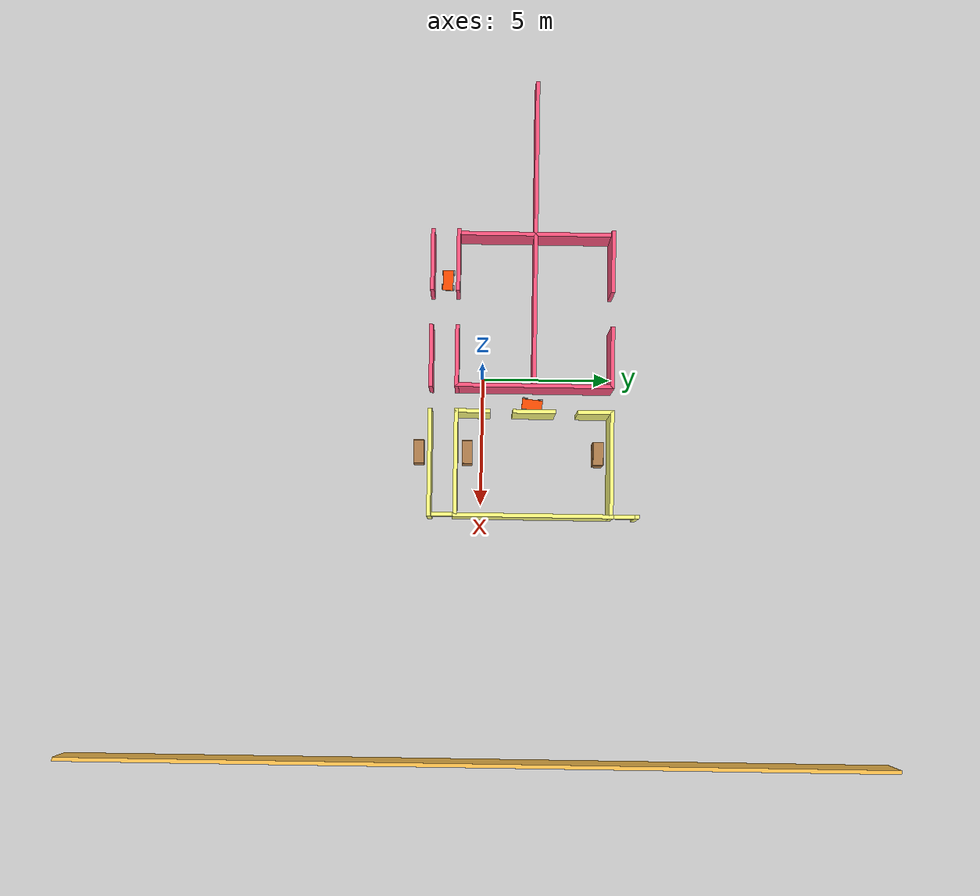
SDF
<sdf version="1.6">
 <world name="default">
  <model name="ground_plane">
   <static>1</static>
   <link name="link">
    <collision name="collision">
     <geometry><plane><normal>0 0 1</normal><size>100 100</size></plane></geometry>
     <surface><friction><ode><mu>100</mu><mu2>50</mu2></ode></friction></surface>
    </collision>
    <visual name="visual">
     <cast_shadows>0</cast_shadows>
     <geometry><plane><normal>0 0 1</normal><size>100 100</size></plane></geometry>
     <material>
      <script><uri>file://media/materials/scripts/gazebo.material</uri><name>Gazebo/Grey</name></script>
     </material>
    </visual>
   </link>
  </model>
  <model name="myWorld">
   <pose>-1.5 0 0 0 -0 0</pose>
   <link name="Wall_130">
    <collision name="Wall_130_Collision">
     <geometry><box><size>2.4 0.15 2.5</size></box></geometry>
     <pose>0 0 1.25 0 -0 0</pose>
    </collision>
    <visual name="Wall_130_Visual">
     <pose>0 0 1.25 0 -0 0</pose>
     <geometry><box><size>2.4 0.15 2.5</size></box></geometry>
     <material>
      <script><uri>file://media/materials/scripts/gazebo.material</uri><name>Gazebo/Grey</name></script>
      <ambient>1 0.333333 0.498039 1</ambient>
     </material>
     <meta><layer>0</layer></meta>
    </visual>
    <pose>-2.875 -2 0 0 -0 0</pose>
   </link>
   <link name="Wall_132">
    <collision name="Wall_132_Collision">
     <geometry><box><size>2.4 0.15 2.5</size></box></geometry>
     <pose>0 0 1.25 0 -0 0</pose>
    </collision>
    <visual name="Wall_132_Visual">
     <pose>0 0 1.25 0 -0 0</pose>
     <geometry><box><size>2.4 0.15 2.5</size></box></geometry>
     <material>
      <script><uri>file://media/materials/scripts/gazebo.material</uri><name>Gazebo/Grey</name></script>
      <ambient>1 0.333333 0.498039 1</ambient>
     </material>
     <meta><layer>0</layer></meta>
    </visual>
    <pose>0.875 -2 0 0 -0 0</pose>
   </link>
   <link name="Wall_135">
    <collision name="Wall_135_Collision">
     <geometry><box><size>2.4 0.15 2.5</size></box></geometry>
     <pose>0 0 1.25 0 -0 0</pose>
    </collision>
    <visual name="Wall_135_Visual">
     <pose>0 0 1.25 0 -0 0</pose>
     <geometry><box><size>2.4 0.15 2.5</size></box></geometry>
     <material>
      <script><uri>file://media/materials/scripts/gazebo.material</uri><name>Gazebo/Grey</name></script>
      <ambient>1 0.333333 0.498039 1</ambient>
     </material>
     <meta><layer>0</layer></meta>
    </visual>
    <pose>-2.875 5 0 0 -0 0</pose>
   </link>
   <link name="Wall_137">
    <collision name="Wall_137_Collision">
     <geometry><box><size>2.4 0.15 2.5</size></box></geometry>
     <pose>0 0 1.25 0 -0 0</pose>
    </collision>
    <visual name="Wall_137_Visual">
     <pose>0 0 1.25 0 -0 0</pose>
     <geometry><box><size>2.4 0.15 2.5</size></box></geometry>
     <material>
      <script><uri>file://media/materials/scripts/gazebo.material</uri><name>Gazebo/Grey</name></script>
      <ambient>1 0.333333 0.498039 1</ambient>
     </material>
     <meta><layer>0</layer></meta>
    </visual>
    <pose>0.875 5 0 0 -0 0</pose>
   </link>
   <link name="Wall_138">
    <collision name="Wall_138_Collision">
     <geometry><box><size>6.15 0.15 2.5</size></box></geometry>
     <pose>0 0 1.25 0 -0 0</pose>
    </collision>
    <visual name="Wall_138_Visual">
     <pose>0 0 1.25 0 -0 0</pose>
     <geometry><box><size>6.15 0.15 2.5</size></box></geometry>
     <material>
      <script><uri>file://media/materials/scripts/gazebo.material</uri><name>Gazebo/Grey</name></script>
      <ambient>1 0.333333 0.498039 1</ambient>
     </material>
     <meta><layer>0</layer></meta>
    </visual>
    <pose>2 2 0 0 0 -1.5708</pose>
   </link>
   <link name="Wall_139">
    <collision name="Wall_139_Collision">
     <geometry><box><size>2.4 0.15 2.5</size></box></geometry>
     <pose>0 0 1.25 0 -0 0</pose>
    </collision>
    <visual name="Wall_139_Visual">
     <pose>0 0 1.25 0 -0 0</pose>
     <geometry><box><size>2.4 0.15 2.5</size></box></geometry>
     <material>
      <script><uri>file://media/materials/scripts/gazebo.material</uri><name>Gazebo/Grey</name></script>
      <ambient>1 0.333333 0.498039 1</ambient>
     </material>
     <meta><layer>0</layer></meta>
    </visual>
    <pose>0.875 -1 0 0 -0 3.14159</pose>
   </link>
   <link name="Wall_141">
    <collision name="Wall_141_Collision">
     <geometry><box><size>2.4 0.15 2.5</size></box></geometry>
     <pose>0 0 1.25 0 -0 0</pose>
    </collision>
    <visual name="Wall_141_Visual">
     <pose>0 0 1.25 0 -0 0</pose>
     <geometry><box><size>2.4 0.15 2.5</size></box></geometry>
     <material>
      <script><uri>file://media/materials/scripts/gazebo.material</uri><name>Gazebo/Grey</name></script>
      <ambient>1 0.333333 0.498039 1</ambient>
     </material>
     <meta><layer>0</layer></meta>
    </visual>
    <pose>-2.875 -1 0 0 -0 0</pose>
   </link>
   <link name="Wall_163">
    <collision name="Wall_163_Collision">
     <geometry><box><size>4.15 0.15 2.5</size></box></geometry>
     <pose>0 0 1.25 0 -0 0</pose>
    </collision>
    <visual name="Wall_163_Visual">
     <pose>0 0 1.25 0 -0 0</pose>
     <geometry><box><size>4.15 0.15 2.5</size></box></geometry>
     <material>
      <script><uri>file://media/materials/scripts/gazebo.material</uri><name>Gazebo/Grey</name></script>
      <ambient>1 1 0.498039 1</ambient>
     </material>
     <meta><layer>0</layer></meta>
    </visual>
    <pose>5 -2 0 0 -0 3.14159</pose>
   </link>
   <link name="Wall_171">
    <pose>7 2 0 0 -0 1.5708</pose>
    <visual name="Wall_171_Visual_0">
     <pose>-3.9875 0 1.25 0 -0 0</pose>
     <geometry><box><size>0.175 0.15 2.5</size></box></geometry>
     <material>
      <script><uri>file://media/materials/scripts/gazebo.material</uri><name>Gazebo/Grey</name></script>
      <ambient>1 1 0.498039 1</ambient>
     </material>
     <meta><layer>0</layer></meta>
    </visual>
    <collision name="Wall_171_Collision_0">
     <geometry><box><size>0.175 0.15 2.5</size></box></geometry>
     <pose>-3.9875 0 1.25 0 -0 0</pose>
    </collision>
    <visual name="Wall_171_Visual_1">
     <pose>-0 0 1.25 0 -0 0</pose>
     <geometry><box><size>6.2 0.15 2.5</size></box></geometry>
     <material>
      <script><uri>file://media/materials/scripts/gazebo.material</uri><name>Gazebo/Grey</name></script>
      <ambient>1 1 0.498039 1</ambient>
     </material>
     <meta><layer>0</layer></meta>
    </visual>
    <collision name="Wall_171_Collision_1">
     <geometry><box><size>6.2 0.15 2.5</size></box></geometry>
     <pose>-0 0 1.25 0 -0 0</pose>
    </collision>
    <visual name="Wall_171_Visual_2">
     <pose>3.9875 0 1.25 0 -0 0</pose>
     <geometry><box><size>0.175 0.15 2.5</size></box></geometry>
     <material>
      <script><uri>file://media/materials/scripts/gazebo.material</uri><name>Gazebo/Grey</name></script>
      <ambient>1 1 0.498039 1</ambient>
     </material>
     <meta><layer>0</layer></meta>
    </visual>
    <collision name="Wall_171_Collision_2">
     <geometry><box><size>0.175 0.15 2.5</size></box></geometry>
     <pose>3.9875 0 1.25 0 -0 0</pose>
    </collision>
    <visual name="Wall_171_Visual_3">
     <pose>-3.5 0 2.25 0 -0 0</pose>
     <geometry><box><size>0.8 0.15 0.5</size></box></geometry>
     <material>
      <script><uri>file://media/materials/scripts/gazebo.material</uri><name>Gazebo/Grey</name></script>
      <ambient>1 1 0.498039 1</ambient>
     </material>
     <meta><layer>0</layer></meta>
    </visual>
    <collision name="Wall_171_Collision_3">
     <geometry><box><size>0.8 0.15 0.5</size></box></geometry>
     <pose>-3.5 0 2.25 0 -0 0</pose>
    </collision>
    <visual name="Wall_171_Visual_4">
     <pose>3.5 0 2.25 0 -0 0</pose>
     <geometry><box><size>0.8 0.15 0.5</size></box></geometry>
     <material>
      <script><uri>file://media/materials/scripts/gazebo.material</uri><name>Gazebo/Grey</name></script>
      <ambient>1 1 0.498039 1</ambient>
     </material>
     <meta><layer>0</layer></meta>
    </visual>
    <collision name="Wall_171_Collision_4">
     <geometry><box><size>0.8 0.15 0.5</size></box></geometry>
     <pose>3.5 0 2.25 0 -0 0</pose>
    </collision>
   </link>
   <link name="Wall_173">
    <collision name="Wall_173_Collision">
     <geometry><box><size>4.15 0.15 2.5</size></box></geometry>
     <pose>0 0 1.25 0 -0 0</pose>
    </collision>
    <visual name="Wall_173_Visual">
     <pose>0 0 1.25 0 -0 0</pose>
     <geometry><box><size>4.15 0.15 2.5</size></box></geometry>
     <material>
      <script><uri>file://media/materials/scripts/gazebo.material</uri><name>Gazebo/Grey</name></script>
      <ambient>1 1 0.498039 1</ambient>
     </material>
     <meta><layer>0</layer></meta>
    </visual>
    <pose>5 -1 0 0 -0 0</pose>
   </link>
   <link name="Wall_175">
    <collision name="Wall_175_Collision">
     <geometry><box><size>4.15 0.15 2.5</size></box></geometry>
     <pose>0 0 1.25 0 -0 0</pose>
    </collision>
    <visual name="Wall_175_Visual">
     <pose>0 0 1.25 0 -0 0</pose>
     <geometry><box><size>4.15 0.15 2.5</size></box></geometry>
     <material>
      <script><uri>file://media/materials/scripts/gazebo.material</uri><name>Gazebo/Grey</name></script>
      <ambient>1 1 0.498039 1</ambient>
     </material>
     <meta><layer>0</layer></meta>
    </visual>
    <pose>5 5 0 0 -0 3.14159</pose>
   </link>
   <link name="Wall_178">
    <collision name="Wall_178_Collision">
     <geometry><box><size>1.4 0.15 2.5</size></box></geometry>
     <pose>0 0 1.25 0 -0 0</pose>
    </collision>
    <visual name="Wall_178_Visual">
     <pose>0 0 1.25 0 -0 0</pose>
     <geometry><box><size>1.4 0.15 2.5</size></box></geometry>
     <material>
      <script><uri>file://media/materials/scripts/gazebo.material</uri><name>Gazebo/Grey</name></script>
      <ambient>1 1 0.498039 1</ambient>
     </material>
     <meta><layer>0</layer></meta>
    </visual>
    <pose>3 4.375 0 0 0 -1.5708</pose>
   </link>
   <link name="Wall_180">
    <collision name="Wall_180_Collision">
     <geometry><box><size>1.4 0.15 2.5</size></box></geometry>
     <pose>0 0 1.25 0 -0 0</pose>
    </collision>
    <visual name="Wall_180_Visual">
     <pose>0 0 1.25 0 -0 0</pose>
     <geometry><box><size>1.4 0.15 2.5</size></box></geometry>
     <material>
      <script><uri>file://media/materials/scripts/gazebo.material</uri><name>Gazebo/Grey</name></script>
      <ambient>1 1 0.498039 1</ambient>
     </material>
     <meta><layer>0</layer></meta>
    </visual>
    <pose>3 -0.375 0 0 -0 1.5708</pose>
   </link>
   <link name="Wall_182">
    <collision name="Wall_182_Collision">
     <geometry><box><size>1.65 0.15 2.5</size></box></geometry>
     <pose>0 0 1.25 0 -0 0</pose>
    </collision>
    <visual name="Wall_182_Visual">
     <pose>0 0 1.25 0 -0 0</pose>
     <geometry><box><size>1.65 0.15 2.5</size></box></geometry>
     <material>
      <script><uri>file://media/materials/scripts/gazebo.material</uri><name>Gazebo/Grey</name></script>
      <ambient>1 1 0.498039 1</ambient>
     </material>
     <meta><layer>0</layer></meta>
    </visual>
    <pose>3 2 0 0 -0 1.5708</pose>
   </link>
   <link name="Wall_2">
    <collision name="Wall_2_Collision">
     <geometry><box><size>32.15 0.15 2.5</size></box></geometry>
     <pose>0 0 1.25 0 -0 0</pose>
    </collision>
    <visual name="Wall_2_Visual">
     <pose>0 0 1.25 0 -0 0</pose>
     <geometry><box><size>32.15 0.15 2.5</size></box></geometry>
     <material>
      <script><uri>file://media/materials/scripts/gazebo.material</uri><name>Gazebo/Grey</name></script>
      <ambient>1 0.764706 0.305882 1</ambient>
     </material>
     <meta><layer>0</layer></meta>
    </visual>
    <pose>16.5 0 0 0 -0 1.5708</pose>
   </link>
   <link name="Wall_83">
    <collision name="Wall_83_Collision">
     <geometry><box><size>6.15 0.15 2</size></box></geometry>
     <pose>0 0 1 0 -0 0</pose>
    </collision>
    <visual name="Wall_83_Visual">
     <pose>0 0 1 0 -0 0</pose>
     <geometry><box><size>6.15 0.15 2</size></box></geometry>
     <material>
      <script><uri>file://media/materials/scripts/gazebo.material</uri><name>Gazebo/Grey</name></script>
      <ambient>1 0.333333 0.498039 1</ambient>
     </material>
     <meta><layer>0</layer></meta>
    </visual>
    <pose>-4 2 0 0 -0 1.5708</pose>
   </link>
   <link name="Wall_86">
    <collision name="Wall_86_Collision">
     <geometry><box><size>12.15 0.15 2</size></box></geometry>
     <pose>0 0 1 0 -0 0</pose>
    </collision>
    <visual name="Wall_86_Visual">
     <pose>0 0 1 0 -0 0</pose>
     <geometry><box><size>12.15 0.15 2</size></box></geometry>
     <material>
      <script><uri>file://media/materials/scripts/gazebo.material</uri><name>Gazebo/Grey</name></script>
      <ambient>1 0.333333 0.498039 1</ambient>
     </material>
     <meta><layer>0</layer></meta>
    </visual>
    <pose>-4 2 0 0 -0 0</pose>
   </link>
   <static>1</static>
  </model>
  <model name="bookshelf">
   <static>1</static>
   <link name="link">
    <inertial><mass>1</mass></inertial>
    <collision name="back">
     <pose>0 0.005 0.6 0 -0 0</pose>
     <geometry><box><size>0.9 0.01 1.2</size></box></geometry>
    </collision>
    <visual name="visual1">
     <pose>0 0.005 0.6 0 -0 0</pose>
     <geometry><box><size>0.9 0.01 1.2</size></box></geometry>
     <material>
      <script><uri>file://media/materials/scripts/gazebo.material</uri><name>Gazebo/Wood</name></script>
     </material>
    </visual>
    <collision name="left_side">
     <pose>0.45 -0.195 0.6 0 -0 0</pose>
     <geometry><box><size>0.02 0.4 1.2</size></box></geometry>
    </collision>
    <visual name="visual2">
     <pose>0.45 -0.195 0.6 0 -0 0</pose>
     <geometry><box><size>0.02 0.4 1.2</size></box></geometry>
     <material>
      <script><uri>file://media/materials/scripts/gazebo.material</uri><name>Gazebo/Wood</name></script>
     </material>
    </visual>
    <collision name="right_side">
     <pose>-0.45 -0.195 0.6 0 -0 0</pose>
     <geometry><box><size>0.02 0.4 1.2</size></box></geometry>
    </collision>
    <visual name="visual3">
     <pose>-0.45 -0.195 0.6 0 -0 0</pose>
     <geometry><box><size>0.02 0.4 1.2</size></box></geometry>
     <material>
      <script><uri>file://media/materials/scripts/gazebo.material</uri><name>Gazebo/Wood</name></script>
     </material>
    </visual>
    <collision name="bottom">
     <pose>0 -0.195 0.03 0 -0 0</pose>
     <geometry><box><size>0.88 0.4 0.06</size></box></geometry>
    </collision>
    <visual name="visual4">
     <pose>0 -0.195 0.03 0 -0 0</pose>
     <geometry><box><size>0.88 0.4 0.06</size></box></geometry>
     <material>
      <script><uri>file://media/materials/scripts/gazebo.material</uri><name>Gazebo/Wood</name></script>
     </material>
    </visual>
    <collision name="top">
     <pose>0 -0.195 1.19 0 -0 0</pose>
     <geometry><box><size>0.88 0.4 0.02</size></box></geometry>
    </collision>
    <visual name="visual5">
     <pose>0 -0.195 1.19 0 -0 0</pose>
     <geometry><box><size>0.88 0.4 0.02</size></box></geometry>
     <material>
      <script><uri>file://media/materials/scripts/gazebo.material</uri><name>Gazebo/Wood</name></script>
     </material>
    </visual>
    <collision name="low_shelf">
     <pose>0 -0.195 0.43 0 -0 0</pose>
     <geometry><box><size>0.88 0.4 0.02</size></box></geometry>
    </collision>
    <visual name="visual6">
     <pose>0 -0.195 0.43 0 -0 0</pose>
     <geometry><box><size>0.88 0.4 0.02</size></box></geometry>
     <material>
      <script><uri>file://media/materials/scripts/gazebo.material</uri><name>Gazebo/Wood</name></script>
     </material>
    </visual>
    <collision name="high_shelf">
     <pose>0 -0.195 0.8 0 -0 0</pose>
     <geometry><box><size>0.88 0.4 0.02</size></box></geometry>
    </collision>
    <visual name="visual7">
     <pose>0 -0.195 0.8 0 -0 0</pose>
     <geometry><box><size>0.88 0.4 0.02</size></box></geometry>
     <material>
      <script><uri>file://media/materials/scripts/gazebo.material</uri><name>Gazebo/Wood</name></script>
     </material>
    </visual>
   </link>
   <pose>3 4.75 0 0 -0 0</pose>
  </model>
  <model name="bookshelf_clone">
   <static>1</static>
   <link name="link">
    <inertial><mass>1</mass></inertial>
    <collision name="back">
     <pose>0 0.005 0.6 0 -0 0</pose>
     <geometry><box><size>0.9 0.01 1.2</size></box></geometry>
    </collision>
    <visual name="visual1">
     <pose>0 0.005 0.6 0 -0 0</pose>
     <geometry><box><size>0.9 0.01 1.2</size></box></geometry>
     <material>
      <script><uri>file://media/materials/scripts/gazebo.material</uri><name>Gazebo/Wood</name></script>
     </material>
    </visual>
    <collision name="left_side">
     <pose>0.45 -0.195 0.6 0 -0 0</pose>
     <geometry><box><size>0.02 0.4 1.2</size></box></geometry>
    </collision>
    <visual name="visual2">
     <pose>0.45 -0.195 0.6 0 -0 0</pose>
     <geometry><box><size>0.02 0.4 1.2</size></box></geometry>
     <material>
      <script><uri>file://media/materials/scripts/gazebo.material</uri><name>Gazebo/Wood</name></script>
     </material>
    </visual>
    <collision name="right_side">
     <pose>-0.45 -0.195 0.6 0 -0 0</pose>
     <geometry><box><size>0.02 0.4 1.2</size></box></geometry>
    </collision>
    <visual name="visual3">
     <pose>-0.45 -0.195 0.6 0 -0 0</pose>
     <geometry><box><size>0.02 0.4 1.2</size></box></geometry>
     <material>
      <script><uri>file://media/materials/scripts/gazebo.material</uri><name>Gazebo/Wood</name></script>
     </material>
    </visual>
    <collision name="bottom">
     <pose>0 -0.195 0.03 0 -0 0</pose>
     <geometry><box><size>0.88 0.4 0.06</size></box></geometry>
    </collision>
    <visual name="visual4">
     <pose>0 -0.195 0.03 0 -0 0</pose>
     <geometry><box><size>0.88 0.4 0.06</size></box></geometry>
     <material>
      <script><uri>file://media/materials/scripts/gazebo.material</uri><name>Gazebo/Wood</name></script>
     </material>
    </visual>
    <collision name="top">
     <pose>0 -0.195 1.19 0 -0 0</pose>
     <geometry><box><size>0.88 0.4 0.02</size></box></geometry>
    </collision>
    <visual name="visual5">
     <pose>0 -0.195 1.19 0 -0 0</pose>
     <geometry><box><size>0.88 0.4 0.02</size></box></geometry>
     <material>
      <script><uri>file://media/materials/scripts/gazebo.material</uri><name>Gazebo/Wood</name></script>
     </material>
    </visual>
    <collision name="low_shelf">
     <pose>0 -0.195 0.43 0 -0 0</pose>
     <geometry><box><size>0.88 0.4 0.02</size></box></geometry>
    </collision>
    <visual name="visual6">
     <pose>0 -0.195 0.43 0 -0 0</pose>
     <geometry><box><size>0.88 0.4 0.02</size></box></geometry>
     <material>
      <script><uri>file://media/materials/scripts/gazebo.material</uri><name>Gazebo/Wood</name></script>
     </material>
    </visual>
    <collision name="high_shelf">
     <pose>0 -0.195 0.8 0 -0 0</pose>
     <geometry><box><size>0.88 0.4 0.02</size></box></geometry>
    </collision>
    <visual name="visual7">
     <pose>0 -0.195 0.8 0 -0 0</pose>
     <geometry><box><size>0.88 0.4 0.02</size></box></geometry>
     <material>
      <script><uri>file://media/materials/scripts/gazebo.material</uri><name>Gazebo/Wood</name></script>
     </material>
    </visual>
   </link>
   <pose>3 -2.25 0 0 -0 0</pose>
  </model>
  <model name="bookshelf_clone_0">
   <static>1</static>
   <link name="link">
    <inertial><mass>1</mass></inertial>
    <collision name="back">
     <pose>0 0.005 0.6 0 -0 0</pose>
     <geometry><box><size>0.9 0.01 1.2</size></box></geometry>
    </collision>
    <visual name="visual1">
     <pose>0 0.005 0.6 0 -0 0</pose>
     <geometry><box><size>0.9 0.01 1.2</size></box></geometry>
     <material>
      <script><uri>file://media/materials/scripts/gazebo.material</uri><name>Gazebo/Wood</name></script>
     </material>
    </visual>
    <collision name="left_side">
     <pose>0.45 -0.195 0.6 0 -0 0</pose>
     <geometry><box><size>0.02 0.4 1.2</size></box></geometry>
    </collision>
    <visual name="visual2">
     <pose>0.45 -0.195 0.6 0 -0 0</pose>
     <geometry><box><size>0.02 0.4 1.2</size></box></geometry>
     <material>
      <script><uri>file://media/materials/scripts/gazebo.material</uri><name>Gazebo/Wood</name></script>
     </material>
    </visual>
    <collision name="right_side">
     <pose>-0.45 -0.195 0.6 0 -0 0</pose>
     <geometry><box><size>0.02 0.4 1.2</size></box></geometry>
    </collision>
    <visual name="visual3">
     <pose>-0.45 -0.195 0.6 0 -0 0</pose>
     <geometry><box><size>0.02 0.4 1.2</size></box></geometry>
     <material>
      <script><uri>file://media/materials/scripts/gazebo.material</uri><name>Gazebo/Wood</name></script>
     </material>
    </visual>
    <collision name="bottom">
     <pose>0 -0.195 0.03 0 -0 0</pose>
     <geometry><box><size>0.88 0.4 0.06</size></box></geometry>
    </collision>
    <visual name="visual4">
     <pose>0 -0.195 0.03 0 -0 0</pose>
     <geometry><box><size>0.88 0.4 0.06</size></box></geometry>
     <material>
      <script><uri>file://media/materials/scripts/gazebo.material</uri><name>Gazebo/Wood</name></script>
     </material>
    </visual>
    <collision name="top">
     <pose>0 -0.195 1.19 0 -0 0</pose>
     <geometry><box><size>0.88 0.4 0.02</size></box></geometry>
    </collision>
    <visual name="visual5">
     <pose>0 -0.195 1.19 0 -0 0</pose>
     <geometry><box><size>0.88 0.4 0.02</size></box></geometry>
     <material>
      <script><uri>file://media/materials/scripts/gazebo.material</uri><name>Gazebo/Wood</name></script>
     </material>
    </visual>
    <collision name="low_shelf">
     <pose>0 -0.195 0.43 0 -0 0</pose>
     <geometry><box><size>0.88 0.4 0.02</size></box></geometry>
    </collision>
    <visual name="visual6">
     <pose>0 -0.195 0.43 0 -0 0</pose>
     <geometry><box><size>0.88 0.4 0.02</size></box></geometry>
     <material>
      <script><uri>file://media/materials/scripts/gazebo.material</uri><name>Gazebo/Wood</name></script>
     </material>
    </visual>
    <collision name="high_shelf">
     <pose>0 -0.195 0.8 0 -0 0</pose>
     <geometry><box><size>0.88 0.4 0.02</size></box></geometry>
    </collision>
    <visual name="visual7">
     <pose>0 -0.195 0.8 0 -0 0</pose>
     <geometry><box><size>0.88 0.4 0.02</size></box></geometry>
     <material>
      <script><uri>file://media/materials/scripts/gazebo.material</uri><name>Gazebo/Wood</name></script>
     </material>
    </visual>
   </link>
   <pose>3 -0.75 0 0 0 -3.14159</pose>
  </model>
  <model name="myRobot_2">
   <link name="link_0">
    <pose>0.008 1e-06 0 0 -0 0</pose>
    <inertial>
     <mass>1</mass>
     <inertia>
      <ixx>0.166667</ixx>
      <ixy>0</ixy>
      <ixz>0</ixz>
      <iyy>0.166667</iyy>
      <iyz>0</iyz>
      <izz>0.166667</izz>
     </inertia>
    </inertial>
    <visual name="visual">
     <geometry><box><size>0.8 0.4 0.05</size></box></geometry>
     <material>
      <lighting>1</lighting>
      <script><uri>file://media/materials/scripts/gazebo.material</uri><name>Gazebo/Grey</name></script>
      <shader type="pixel"><normal_map>__default__</normal_map></shader>
      <ambient>1 0.3 0 1</ambient>
      <diffuse>0.7 0.7 0.7 1</diffuse>
      <specular>0.01 0.01 0.01 1</specular>
      <emissive>0 0 0 1</emissive>
     </material>
    </visual>
    <collision name="collision">
     <geometry><box><size>0.8 0.4 0.05</size></box></geometry>
     <surface>
      <friction>
       <ode><mu>1</mu><mu2>1</mu2><fdir1>0 0 0</fdir1><slip1>0</slip1><slip2>0</slip2></ode>
       <torsional>
        <coefficient>1</coefficient>
        <patch_radius>0</patch_radius>
        <surface_radius>0</surface_radius>
        <use_patch_radius>1</use_patch_radius>
        <ode><slip>0</slip></ode>
       </torsional>
      </friction>
      <bounce><restitution_coefficient>0</restitution_coefficient><threshold>1e+06</threshold></bounce>
      <contact>
       <collide_without_contact>0</collide_without_contact>
       <collide_without_contact_bitmask>1</collide_without_contact_bitmask>
       <collide_bitmask>1</collide_bitmask>
       <ode>
        <soft_cfm>0</soft_cfm>
        <soft_erp>0.2</soft_erp>
        <kp>1e+13</kp>
        <kd>1</kd>
        <max_vel>0.01</max_vel>
        <min_depth>0</min_depth>
       </ode>
       <bullet>
        <split_impulse>1</split_impulse>
        <split_impulse_penetration_threshold>-0.01</split_impulse_penetration_threshold>
        <soft_cfm>0</soft_cfm>
        <soft_erp>0.2</soft_erp>
        <kp>1e+13</kp>
        <kd>1</kd>
       </bullet>
      </contact>
     </surface>
    </collision>
   </link>
   <link name="link_1">
    <pose>0.268 -0.225013 0 1.5707 -0 0</pose>
    <inertial>
     <mass>1</mass>
     <inertia><ixx>0.145833</ixx><ixy>0</ixy><ixz>0</ixz><iyy>0.145833</iyy><iyz>0</iyz><izz>0.125</izz></inertia>
    </inertial>
    <visual name="visual">
     <geometry><cylinder><radius>0.1</radius><length>0.05</length></cylinder></geometry>
     <material>
      <lighting>1</lighting>
      <script><uri>file://media/materials/scripts/gazebo.material</uri><name>Gazebo/Grey</name></script>
      <shader type="pixel"><normal_map>__default__</normal_map></shader>
      <ambient>1 1 1 1</ambient>
      <diffuse>0.7 0.7 0.7 1</diffuse>
      <specular>0.01 0.01 0.01 1</specular>
      <emissive>0 0 0 1</emissive>
     </material>
    </visual>
    <collision name="collision">
     <geometry><cylinder><radius>0.1</radius><length>0.05</length></cylinder></geometry>
     <surface>
      <friction>
       <ode><mu>1</mu><mu2>1</mu2><fdir1>0 0 0</fdir1><slip1>0</slip1><slip2>0</slip2></ode>
       <torsional>
        <coefficient>1</coefficient>
        <patch_radius>0</patch_radius>
        <surface_radius>0</surface_radius>
        <use_patch_radius>1</use_patch_radius>
        <ode><slip>0</slip></ode>
       </torsional>
      </friction>
      <bounce><restitution_coefficient>0</restitution_coefficient><threshold>1e+06</threshold></bounce>
      <contact>
       <collide_without_contact>0</collide_without_contact>
       <collide_without_contact_bitmask>1</collide_without_contact_bitmask>
       <collide_bitmask>1</collide_bitmask>
       <ode>
        <soft_cfm>0</soft_cfm>
        <soft_erp>0.2</soft_erp>
        <kp>1e+13</kp>
        <kd>1</kd>
        <max_vel>0.01</max_vel>
        <min_depth>0</min_depth>
       </ode>
       <bullet>
        <split_impulse>1</split_impulse>
        <split_impulse_penetration_threshold>-0.01</split_impulse_penetration_threshold>
        <soft_cfm>0</soft_cfm>
        <soft_erp>0.2</soft_erp>
        <kp>1e+13</kp>
        <kd>1</kd>
       </bullet>
      </contact>
     </surface>
    </collision>
   </link>
   <link name="link_1_clone">
    <pose>-0.292 -0.225009 0 1.5707 -0 0</pose>
    <inertial>
     <mass>1</mass>
     <inertia><ixx>0.145833</ixx><ixy>0</ixy><ixz>0</ixz><iyy>0.145833</iyy><iyz>0</iyz><izz>0.125</izz></inertia>
    </inertial>
    <visual name="visual">
     <geometry><cylinder><radius>0.1</radius><length>0.05</length></cylinder></geometry>
     <material>
      <lighting>1</lighting>
      <script><uri>file://media/materials/scripts/gazebo.material</uri><name>Gazebo/Grey</name></script>
      <shader type="pixel"><normal_map>__default__</normal_map></shader>
      <ambient>1 1 1 1</ambient>
      <diffuse>0.7 0.7 0.7 1</diffuse>
      <specular>0.01 0.01 0.01 1</specular>
      <emissive>0 0 0 1</emissive>
     </material>
    </visual>
    <collision name="collision">
     <geometry><cylinder><radius>0.1</radius><length>0.05</length></cylinder></geometry>
     <surface>
      <friction>
       <ode><mu>1</mu><mu2>1</mu2><fdir1>0 0 0</fdir1><slip1>0</slip1><slip2>0</slip2></ode>
       <torsional>
        <coefficient>1</coefficient>
        <patch_radius>0</patch_radius>
        <surface_radius>0</surface_radius>
        <use_patch_radius>1</use_patch_radius>
        <ode><slip>0</slip></ode>
       </torsional>
      </friction>
      <bounce><restitution_coefficient>0</restitution_coefficient><threshold>1e+06</threshold></bounce>
      <contact>
       <collide_without_contact>0</collide_without_contact>
       <collide_without_contact_bitmask>1</collide_without_contact_bitmask>
       <collide_bitmask>1</collide_bitmask>
       <ode>
        <soft_cfm>0</soft_cfm>
        <soft_erp>0.2</soft_erp>
        <kp>1e+13</kp>
        <kd>1</kd>
        <max_vel>0.01</max_vel>
        <min_depth>0</min_depth>
       </ode>
       <bullet>
        <split_impulse>1</split_impulse>
        <split_impulse_penetration_threshold>-0.01</split_impulse_penetration_threshold>
        <soft_cfm>0</soft_cfm>
        <soft_erp>0.2</soft_erp>
        <kp>1e+13</kp>
        <kd>1</kd>
       </bullet>
      </contact>
     </surface>
    </collision>
   </link>
   <link name="link_1_clone_0">
    <pose>0.308 0.22501 0 1.5707 -0 0</pose>
    <inertial>
     <mass>1</mass>
     <inertia><ixx>0.145833</ixx><ixy>0</ixy><ixz>0</ixz><iyy>0.145833</iyy><iyz>0</iyz><izz>0.125</izz></inertia>
    </inertial>
    <visual name="visual">
     <geometry><cylinder><radius>0.1</radius><length>0.05</length></cylinder></geometry>
     <material>
      <lighting>1</lighting>
      <script><uri>file://media/materials/scripts/gazebo.material</uri><name>Gazebo/Grey</name></script>
      <shader type="pixel"><normal_map>__default__</normal_map></shader>
      <ambient>1 1 1 1</ambient>
      <diffuse>0.7 0.7 0.7 1</diffuse>
      <specular>0.01 0.01 0.01 1</specular>
      <emissive>0 0 0 1</emissive>
     </material>
    </visual>
    <collision name="collision">
     <geometry><cylinder><radius>0.1</radius><length>0.05</length></cylinder></geometry>
     <surface>
      <friction>
       <ode><mu>1</mu><mu2>1</mu2><fdir1>0 0 0</fdir1><slip1>0</slip1><slip2>0</slip2></ode>
       <torsional>
        <coefficient>1</coefficient>
        <patch_radius>0</patch_radius>
        <surface_radius>0</surface_radius>
        <use_patch_radius>1</use_patch_radius>
        <ode><slip>0</slip></ode>
       </torsional>
      </friction>
      <bounce><restitution_coefficient>0</restitution_coefficient><threshold>1e+06</threshold></bounce>
      <contact>
       <collide_without_contact>0</collide_without_contact>
       <collide_without_contact_bitmask>1</collide_without_contact_bitmask>
       <collide_bitmask>1</collide_bitmask>
       <ode>
        <soft_cfm>0</soft_cfm>
        <soft_erp>0.2</soft_erp>
        <kp>1e+13</kp>
        <kd>1</kd>
        <max_vel>0.01</max_vel>
        <min_depth>0</min_depth>
       </ode>
       <bullet>
        <split_impulse>1</split_impulse>
        <split_impulse_penetration_threshold>-0.01</split_impulse_penetration_threshold>
        <soft_cfm>0</soft_cfm>
        <soft_erp>0.2</soft_erp>
        <kp>1e+13</kp>
        <kd>1</kd>
       </bullet>
      </contact>
     </surface>
    </collision>
   </link>
   <link name="link_1_clone_1">
    <pose>-0.292 0.22501 0 1.5707 -0 0</pose>
    <inertial>
     <mass>1</mass>
     <inertia><ixx>0.145833</ixx><ixy>0</ixy><ixz>0</ixz><iyy>0.145833</iyy><iyz>0</iyz><izz>0.125</izz></inertia>
    </inertial>
    <visual name="visual">
     <geometry><cylinder><radius>0.1</radius><length>0.05</length></cylinder></geometry>
     <material>
      <lighting>1</lighting>
      <script><uri>file://media/materials/scripts/gazebo.material</uri><name>Gazebo/Grey</name></script>
      <shader type="pixel"><normal_map>__default__</normal_map></shader>
      <ambient>1 1 1 1</ambient>
      <diffuse>0.7 0.7 0.7 1</diffuse>
      <specular>0.01 0.01 0.01 1</specular>
      <emissive>0 0 0 1</emissive>
     </material>
    </visual>
    <collision name="collision">
     <geometry><cylinder><radius>0.1</radius><length>0.05</length></cylinder></geometry>
     <surface>
      <friction>
       <ode><mu>1</mu><mu2>1</mu2><fdir1>0 0 0</fdir1><slip1>0</slip1><slip2>0</slip2></ode>
       <torsional>
        <coefficient>1</coefficient>
        <patch_radius>0</patch_radius>
        <surface_radius>0</surface_radius>
        <use_patch_radius>1</use_patch_radius>
        <ode><slip>0</slip></ode>
       </torsional>
      </friction>
      <bounce><restitution_coefficient>0</restitution_coefficient><threshold>1e+06</threshold></bounce>
      <contact>
       <collide_without_contact>0</collide_without_contact>
       <collide_without_contact_bitmask>1</collide_without_contact_bitmask>
       <collide_bitmask>1</collide_bitmask>
       <ode>
        <soft_cfm>0</soft_cfm>
        <soft_erp>0.2</soft_erp>
        <kp>1e+13</kp>
        <kd>1</kd>
        <max_vel>0.01</max_vel>
        <min_depth>0</min_depth>
       </ode>
       <bullet>
        <split_impulse>1</split_impulse>
        <split_impulse_penetration_threshold>-0.01</split_impulse_penetration_threshold>
        <soft_cfm>0</soft_cfm>
        <soft_erp>0.2</soft_erp>
        <kp>1e+13</kp>
        <kd>1</kd>
       </bullet>
      </contact>
     </surface>
    </collision>
   </link>
   <joint name="link_0_JOINT_1" type="revolute">
    <parent>link_0</parent>
    <child>link_1</child>
    <axis>
     <xyz>0 0 1</xyz>
     <use_parent_model_frame>0</use_parent_model_frame>
     <limit>
      <lower>-1.79769e+308</lower>
      <upper>1.79769e+308</upper>
      <effort>-1</effort>
      <velocity>-1</velocity>
     </limit>
     <dynamics>
      <spring_reference>0</spring_reference>
      <spring_stiffness>0</spring_stiffness>
      <damping>0</damping>
     </dynamics>
    </axis>
    <physics>
     <ode><limit><cfm>0</cfm><erp>0.2</erp></limit><suspension><cfm>0</cfm><erp>0.2</erp></suspension></ode>
    </physics>
   </joint>
   <joint name="link_0_JOINT_2" type="revolute">
    <parent>link_0</parent>
    <child>link_1_clone</child>
    <axis>
     <xyz>0 0 1</xyz>
     <use_parent_model_frame>0</use_parent_model_frame>
     <limit>
      <lower>-1.79769e+308</lower>
      <upper>1.79769e+308</upper>
      <effort>-1</effort>
      <velocity>-1</velocity>
     </limit>
     <dynamics>
      <spring_reference>0</spring_reference>
      <spring_stiffness>0</spring_stiffness>
      <damping>0</damping>
     </dynamics>
    </axis>
    <physics>
     <ode><limit><cfm>0</cfm><erp>0.2</erp></limit><suspension><cfm>0</cfm><erp>0.2</erp></suspension></ode>
    </physics>
   </joint>
   <joint name="link_0_JOINT_3" type="revolute">
    <parent>link_0</parent>
    <child>link_1_clone_0</child>
    <axis>
     <xyz>0 0 1</xyz>
     <use_parent_model_frame>0</use_parent_model_frame>
     <limit>
      <lower>-1.79769e+308</lower>
      <upper>1.79769e+308</upper>
      <effort>-1</effort>
      <velocity>-1</velocity>
     </limit>
     <dynamics>
      <spring_reference>0</spring_reference>
      <spring_stiffness>0</spring_stiffness>
      <damping>0</damping>
     </dynamics>
    </axis>
    <physics>
     <ode><limit><cfm>0</cfm><erp>0.2</erp></limit><suspension><cfm>0</cfm><erp>0.2</erp></suspension></ode>
    </physics>
   </joint>
   <joint name="link_0_JOINT_4" type="revolute">
    <parent>link_0</parent>
    <child>link_1_clone_1</child>
    <axis>
     <xyz>0 0 1</xyz>
     <use_parent_model_frame>0</use_parent_model_frame>
     <limit>
      <lower>-1.79769e+308</lower>
      <upper>1.79769e+308</upper>
      <effort>-1</effort>
      <velocity>-1</velocity>
     </limit>
     <dynamics>
      <spring_reference>0</spring_reference>
      <spring_stiffness>0</spring_stiffness>
      <damping>0</damping>
     </dynamics>
    </axis>
    <physics>
     <ode><limit><cfm>0</cfm><erp>0.2</erp></limit><suspension><cfm>0</cfm><erp>0.2</erp></suspension></ode>
    </physics>
   </joint>
   <static>0</static>
   <pose>-3.93198 -1.42698 0.110003 4e-06 0 -0.030849</pose>
  </model>
  <model name="myRobot_5">
   <link name="link_0">
    <pose>0.008 1e-06 0 0 -0 0</pose>
    <inertial>
     <mass>1</mass>
     <inertia>
      <ixx>0.166667</ixx>
      <ixy>0</ixy>
      <ixz>0</ixz>
      <iyy>0.166667</iyy>
      <iyz>0</iyz>
      <izz>0.166667</izz>
     </inertia>
    </inertial>
    <visual name="visual">
     <geometry><box><size>0.8 0.4 0.05</size></box></geometry>
     <material>
      <lighting>1</lighting>
      <script><uri>file://media/materials/scripts/gazebo.material</uri><name>Gazebo/Grey</name></script>
      <shader type="pixel"><normal_map>__default__</normal_map></shader>
      <ambient>1 0.3 0 1</ambient>
      <diffuse>0.7 0.7 0.7 1</diffuse>
      <specular>0.01 0.01 0.01 1</specular>
      <emissive>0 0 0 1</emissive>
     </material>
    </visual>
    <collision name="collision">
     <geometry><box><size>0.8 0.4 0.05</size></box></geometry>
     <surface>
      <friction>
       <ode><mu>1</mu><mu2>1</mu2><fdir1>0 0 0</fdir1><slip1>0</slip1><slip2>0</slip2></ode>
       <torsional>
        <coefficient>1</coefficient>
        <patch_radius>0</patch_radius>
        <surface_radius>0</surface_radius>
        <use_patch_radius>1</use_patch_radius>
        <ode><slip>0</slip></ode>
       </torsional>
      </friction>
      <bounce><restitution_coefficient>0</restitution_coefficient><threshold>1e+06</threshold></bounce>
      <contact>
       <collide_without_contact>0</collide_without_contact>
       <collide_without_contact_bitmask>1</collide_without_contact_bitmask>
       <collide_bitmask>1</collide_bitmask>
       <ode>
        <soft_cfm>0</soft_cfm>
        <soft_erp>0.2</soft_erp>
        <kp>1e+13</kp>
        <kd>1</kd>
        <max_vel>0.01</max_vel>
        <min_depth>0</min_depth>
       </ode>
       <bullet>
        <split_impulse>1</split_impulse>
        <split_impulse_penetration_threshold>-0.01</split_impulse_penetration_threshold>
        <soft_cfm>0</soft_cfm>
        <soft_erp>0.2</soft_erp>
        <kp>1e+13</kp>
        <kd>1</kd>
       </bullet>
      </contact>
     </surface>
    </collision>
   </link>
   <link name="link_1">
    <pose>0.268 -0.225013 0 1.5707 -0 0</pose>
    <inertial>
     <mass>1</mass>
     <inertia><ixx>0.145833</ixx><ixy>0</ixy><ixz>0</ixz><iyy>0.145833</iyy><iyz>0</iyz><izz>0.125</izz></inertia>
    </inertial>
    <visual name="visual">
     <geometry><cylinder><radius>0.1</radius><length>0.05</length></cylinder></geometry>
     <material>
      <lighting>1</lighting>
      <script><uri>file://media/materials/scripts/gazebo.material</uri><name>Gazebo/Grey</name></script>
      <shader type="pixel"><normal_map>__default__</normal_map></shader>
      <ambient>1 1 1 1</ambient>
      <diffuse>0.7 0.7 0.7 1</diffuse>
      <specular>0.01 0.01 0.01 1</specular>
      <emissive>0 0 0 1</emissive>
     </material>
    </visual>
    <collision name="collision">
     <geometry><cylinder><radius>0.1</radius><length>0.05</length></cylinder></geometry>
     <surface>
      <friction>
       <ode><mu>1</mu><mu2>1</mu2><fdir1>0 0 0</fdir1><slip1>0</slip1><slip2>0</slip2></ode>
       <torsional>
        <coefficient>1</coefficient>
        <patch_radius>0</patch_radius>
        <surface_radius>0</surface_radius>
        <use_patch_radius>1</use_patch_radius>
        <ode><slip>0</slip></ode>
       </torsional>
      </friction>
      <bounce><restitution_coefficient>0</restitution_coefficient><threshold>1e+06</threshold></bounce>
      <contact>
       <collide_without_contact>0</collide_without_contact>
       <collide_without_contact_bitmask>1</collide_without_contact_bitmask>
       <collide_bitmask>1</collide_bitmask>
       <ode>
        <soft_cfm>0</soft_cfm>
        <soft_erp>0.2</soft_erp>
        <kp>1e+13</kp>
        <kd>1</kd>
        <max_vel>0.01</max_vel>
        <min_depth>0</min_depth>
       </ode>
       <bullet>
        <split_impulse>1</split_impulse>
        <split_impulse_penetration_threshold>-0.01</split_impulse_penetration_threshold>
        <soft_cfm>0</soft_cfm>
        <soft_erp>0.2</soft_erp>
        <kp>1e+13</kp>
        <kd>1</kd>
       </bullet>
      </contact>
     </surface>
    </collision>
   </link>
   <link name="link_1_clone">
    <pose>-0.292 -0.225009 0 1.5707 -0 0</pose>
    <inertial>
     <mass>1</mass>
     <inertia><ixx>0.145833</ixx><ixy>0</ixy><ixz>0</ixz><iyy>0.145833</iyy><iyz>0</iyz><izz>0.125</izz></inertia>
    </inertial>
    <visual name="visual">
     <geometry><cylinder><radius>0.1</radius><length>0.05</length></cylinder></geometry>
     <material>
      <lighting>1</lighting>
      <script><uri>file://media/materials/scripts/gazebo.material</uri><name>Gazebo/Grey</name></script>
      <shader type="pixel"><normal_map>__default__</normal_map></shader>
      <ambient>1 1 1 1</ambient>
      <diffuse>0.7 0.7 0.7 1</diffuse>
      <specular>0.01 0.01 0.01 1</specular>
      <emissive>0 0 0 1</emissive>
     </material>
    </visual>
    <collision name="collision">
     <geometry><cylinder><radius>0.1</radius><length>0.05</length></cylinder></geometry>
     <surface>
      <friction>
       <ode><mu>1</mu><mu2>1</mu2><fdir1>0 0 0</fdir1><slip1>0</slip1><slip2>0</slip2></ode>
       <torsional>
        <coefficient>1</coefficient>
        <patch_radius>0</patch_radius>
        <surface_radius>0</surface_radius>
        <use_patch_radius>1</use_patch_radius>
        <ode><slip>0</slip></ode>
       </torsional>
      </friction>
      <bounce><restitution_coefficient>0</restitution_coefficient><threshold>1e+06</threshold></bounce>
      <contact>
       <collide_without_contact>0</collide_without_contact>
       <collide_without_contact_bitmask>1</collide_without_contact_bitmask>
       <collide_bitmask>1</collide_bitmask>
       <ode>
        <soft_cfm>0</soft_cfm>
        <soft_erp>0.2</soft_erp>
        <kp>1e+13</kp>
        <kd>1</kd>
        <max_vel>0.01</max_vel>
        <min_depth>0</min_depth>
       </ode>
       <bullet>
        <split_impulse>1</split_impulse>
        <split_impulse_penetration_threshold>-0.01</split_impulse_penetration_threshold>
        <soft_cfm>0</soft_cfm>
        <soft_erp>0.2</soft_erp>
        <kp>1e+13</kp>
        <kd>1</kd>
       </bullet>
      </contact>
     </surface>
    </collision>
   </link>
   <link name="link_1_clone_0">
    <pose>0.308 0.22501 0 1.5707 -0 0</pose>
    <inertial>
     <mass>1</mass>
     <inertia><ixx>0.145833</ixx><ixy>0</ixy><ixz>0</ixz><iyy>0.145833</iyy><iyz>0</iyz><izz>0.125</izz></inertia>
    </inertial>
    <visual name="visual">
     <geometry><cylinder><radius>0.1</radius><length>0.05</length></cylinder></geometry>
     <material>
      <lighting>1</lighting>
      <script><uri>file://media/materials/scripts/gazebo.material</uri><name>Gazebo/Grey</name></script>
      <shader type="pixel"><normal_map>__default__</normal_map></shader>
      <ambient>1 1 1 1</ambient>
      <diffuse>0.7 0.7 0.7 1</diffuse>
      <specular>0.01 0.01 0.01 1</specular>
      <emissive>0 0 0 1</emissive>
     </material>
    </visual>
    <collision name="collision">
     <geometry><cylinder><radius>0.1</radius><length>0.05</length></cylinder></geometry>
     <surface>
      <friction>
       <ode><mu>1</mu><mu2>1</mu2><fdir1>0 0 0</fdir1><slip1>0</slip1><slip2>0</slip2></ode>
       <torsional>
        <coefficient>1</coefficient>
        <patch_radius>0</patch_radius>
        <surface_radius>0</surface_radius>
        <use_patch_radius>1</use_patch_radius>
        <ode><slip>0</slip></ode>
       </torsional>
      </friction>
      <bounce><restitution_coefficient>0</restitution_coefficient><threshold>1e+06</threshold></bounce>
      <contact>
       <collide_without_contact>0</collide_without_contact>
       <collide_without_contact_bitmask>1</collide_without_contact_bitmask>
       <collide_bitmask>1</collide_bitmask>
       <ode>
        <soft_cfm>0</soft_cfm>
        <soft_erp>0.2</soft_erp>
        <kp>1e+13</kp>
        <kd>1</kd>
        <max_vel>0.01</max_vel>
        <min_depth>0</min_depth>
       </ode>
       <bullet>
        <split_impulse>1</split_impulse>
        <split_impulse_penetration_threshold>-0.01</split_impulse_penetration_threshold>
        <soft_cfm>0</soft_cfm>
        <soft_erp>0.2</soft_erp>
        <kp>1e+13</kp>
        <kd>1</kd>
       </bullet>
      </contact>
     </surface>
    </collision>
   </link>
   <link name="link_1_clone_1">
    <pose>-0.292 0.22501 0 1.5707 -0 0</pose>
    <inertial>
     <mass>1</mass>
     <inertia><ixx>0.145833</ixx><ixy>0</ixy><ixz>0</ixz><iyy>0.145833</iyy><iyz>0</iyz><izz>0.125</izz></inertia>
    </inertial>
    <visual name="visual">
     <geometry><cylinder><radius>0.1</radius><length>0.05</length></cylinder></geometry>
     <material>
      <lighting>1</lighting>
      <script><uri>file://media/materials/scripts/gazebo.material</uri><name>Gazebo/Grey</name></script>
      <shader type="pixel"><normal_map>__default__</normal_map></shader>
      <ambient>1 1 1 1</ambient>
      <diffuse>0.7 0.7 0.7 1</diffuse>
      <specular>0.01 0.01 0.01 1</specular>
      <emissive>0 0 0 1</emissive>
     </material>
    </visual>
    <collision name="collision">
     <geometry><cylinder><radius>0.1</radius><length>0.05</length></cylinder></geometry>
     <surface>
      <friction>
       <ode><mu>1</mu><mu2>1</mu2><fdir1>0 0 0</fdir1><slip1>0</slip1><slip2>0</slip2></ode>
       <torsional>
        <coefficient>1</coefficient>
        <patch_radius>0</patch_radius>
        <surface_radius>0</surface_radius>
        <use_patch_radius>1</use_patch_radius>
        <ode><slip>0</slip></ode>
       </torsional>
      </friction>
      <bounce><restitution_coefficient>0</restitution_coefficient><threshold>1e+06</threshold></bounce>
      <contact>
       <collide_without_contact>0</collide_without_contact>
       <collide_without_contact_bitmask>1</collide_without_contact_bitmask>
       <collide_bitmask>1</collide_bitmask>
       <ode>
        <soft_cfm>0</soft_cfm>
        <soft_erp>0.2</soft_erp>
        <kp>1e+13</kp>
        <kd>1</kd>
        <max_vel>0.01</max_vel>
        <min_depth>0</min_depth>
       </ode>
       <bullet>
        <split_impulse>1</split_impulse>
        <split_impulse_penetration_threshold>-0.01</split_impulse_penetration_threshold>
        <soft_cfm>0</soft_cfm>
        <soft_erp>0.2</soft_erp>
        <kp>1e+13</kp>
        <kd>1</kd>
       </bullet>
      </contact>
     </surface>
    </collision>
   </link>
   <joint name="link_0_JOINT_1" type="revolute">
    <parent>link_0</parent>
    <child>link_1</child>
    <axis>
     <xyz>0 0 1</xyz>
     <use_parent_model_frame>0</use_parent_model_frame>
     <limit>
      <lower>-1.79769e+308</lower>
      <upper>1.79769e+308</upper>
      <effort>-1</effort>
      <velocity>-1</velocity>
     </limit>
     <dynamics>
      <spring_reference>0</spring_reference>
      <spring_stiffness>0</spring_stiffness>
      <damping>0</damping>
     </dynamics>
    </axis>
    <physics>
     <ode><limit><cfm>0</cfm><erp>0.2</erp></limit><suspension><cfm>0</cfm><erp>0.2</erp></suspension></ode>
    </physics>
   </joint>
   <joint name="link_0_JOINT_2" type="revolute">
    <parent>link_0</parent>
    <child>link_1_clone</child>
    <axis>
     <xyz>0 0 1</xyz>
     <use_parent_model_frame>0</use_parent_model_frame>
     <limit>
      <lower>-1.79769e+308</lower>
      <upper>1.79769e+308</upper>
      <effort>-1</effort>
      <velocity>-1</velocity>
     </limit>
     <dynamics>
      <spring_reference>0</spring_reference>
      <spring_stiffness>0</spring_stiffness>
      <damping>0</damping>
     </dynamics>
    </axis>
    <physics>
     <ode><limit><cfm>0</cfm><erp>0.2</erp></limit><suspension><cfm>0</cfm><erp>0.2</erp></suspension></ode>
    </physics>
   </joint>
   <joint name="link_0_JOINT_3" type="revolute">
    <parent>link_0</parent>
    <child>link_1_clone_0</child>
    <axis>
     <xyz>0 0 1</xyz>
     <use_parent_model_frame>0</use_parent_model_frame>
     <limit>
      <lower>-1.79769e+308</lower>
      <upper>1.79769e+308</upper>
      <effort>-1</effort>
      <velocity>-1</velocity>
     </limit>
     <dynamics>
      <spring_reference>0</spring_reference>
      <spring_stiffness>0</spring_stiffness>
      <damping>0</damping>
     </dynamics>
    </axis>
    <physics>
     <ode><limit><cfm>0</cfm><erp>0.2</erp></limit><suspension><cfm>0</cfm><erp>0.2</erp></suspension></ode>
    </physics>
   </joint>
   <joint name="link_0_JOINT_4" type="revolute">
    <parent>link_0</parent>
    <child>link_1_clone_1</child>
    <axis>
     <xyz>0 0 1</xyz>
     <use_parent_model_frame>0</use_parent_model_frame>
     <limit>
      <lower>-1.79769e+308</lower>
      <upper>1.79769e+308</upper>
      <effort>-1</effort>
      <velocity>-1</velocity>
     </limit>
     <dynamics>
      <spring_reference>0</spring_reference>
      <spring_stiffness>0</spring_stiffness>
      <damping>0</damping>
     </dynamics>
    </axis>
    <physics>
     <ode><limit><cfm>0</cfm><erp>0.2</erp></limit><suspension><cfm>0</cfm><erp>0.2</erp></suspension></ode>
    </physics>
   </joint>
   <static>0</static>
   <pose>1.00765 1.96974 0.11 1e-05 0 1.4646</pose>
  </model>
 </world>
</sdf>
